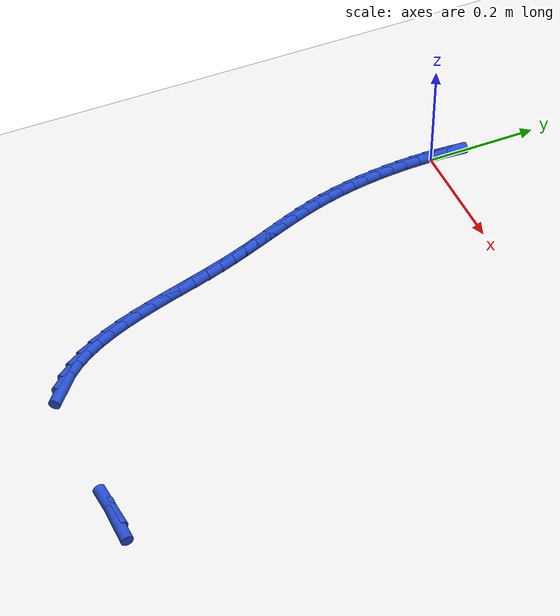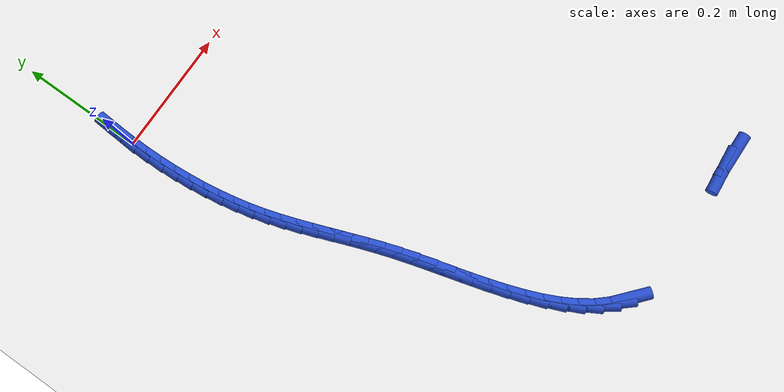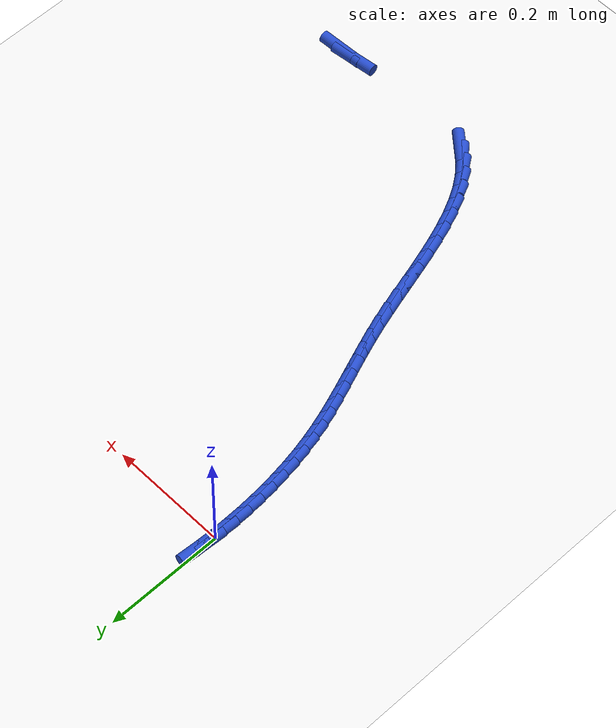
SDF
<sdf version="1.6">
 <world name="default">
  <model name="ground_plane">
   <static>1</static>
   <link name="link">
    <collision name="collision">
     <geometry><plane><normal>0 0 1</normal><size>100 100</size></plane></geometry>
     <surface><friction><ode><mu>100</mu><mu2>50</mu2></ode></friction></surface>
    </collision>
    <visual name="visual">
     <cast_shadows>0</cast_shadows>
     <geometry><plane><normal>0 0 1</normal><size>100 100</size></plane></geometry>
     <material>
      <script><uri>file://media/materials/scripts/gazebo.material</uri><name>Gazebo/WhiteGlow</name></script>
     </material>
    </visual>
   </link>
  </model>
  <model name="line">
   <link name="link_0">
    <pose>3.469446951953614e-18 -1.3877787807814457e-17 0.01 0 1.57 1.5349966315205532</pose>
    <collision name="collision">
     <geometry><cylinder><radius>0.01</radius><length>0.08</length></cylinder></geometry>
    </collision>
    <visual name="visual">
     <material>
      <script><name>Gazebo/Blue</name><uri>file://media/materials/scripts/gazebo.material</uri></script>
     </material>
     <geometry><cylinder><radius>0.01</radius><length>0.08</length></cylinder></geometry>
    </visual>
   </link>
   <link name="link_240">
    <pose>0.522911942031777 -0.7707624776303094 0.01 0 1.57 0.03796574849995566</pose>
    <collision name="collision">
     <geometry><cylinder><radius>0.01</radius><length>0.08</length></cylinder></geometry>
    </collision>
    <visual name="visual">
     <material>
      <script><name>Gazebo/Blue</name><uri>file://media/materials/scripts/gazebo.material</uri></script>
     </material>
     <geometry><cylinder><radius>0.01</radius><length>0.08</length></cylinder></geometry>
    </visual>
   </link>
   <link name="link_241">
    <pose>0.4962835578255461 -0.7717739301833303 0.01 0 1.57 0.10808124786075092</pose>
    <collision name="collision">
     <geometry><cylinder><radius>0.01</radius><length>0.08</length></cylinder></geometry>
    </collision>
    <visual name="visual">
     <material>
      <script><name>Gazebo/Blue</name><uri>file://media/materials/scripts/gazebo.material</uri></script>
     </material>
     <geometry><cylinder><radius>0.01</radius><length>0.08</length></cylinder></geometry>
    </visual>
   </link>
   <link name="link_250">
    <pose>0.24436424438832377 -0.7595002854497099 0.01 0 1.57 -0.703600476036129</pose>
    <collision name="collision">
     <geometry><cylinder><radius>0.01</radius><length>0.08</length></cylinder></geometry>
    </collision>
    <visual name="visual">
     <material>
      <script><name>Gazebo/Blue</name><uri>file://media/materials/scripts/gazebo.material</uri></script>
     </material>
     <geometry><cylinder><radius>0.01</radius><length>0.08</length></cylinder></geometry>
    </visual>
   </link>
   <link name="link_251">
    <pose>0.22568356135677967 -0.7436504364709818 0.01 0 1.57 -0.8411968710237758</pose>
    <collision name="collision">
     <geometry><cylinder><radius>0.01</radius><length>0.08</length></cylinder></geometry>
    </collision>
    <visual name="visual">
     <material>
      <script><name>Gazebo/Blue</name><uri>file://media/materials/scripts/gazebo.material</uri></script>
     </material>
     <geometry><cylinder><radius>0.01</radius><length>0.08</length></cylinder></geometry>
    </visual>
   </link>
   <link name="link_252">
    <pose>0.2090012644688933 -0.724994248824416 0.01 0 1.57 -0.956834612875896</pose>
    <collision name="collision">
     <geometry><cylinder><radius>0.01</radius><length>0.08</length></cylinder></geometry>
    </collision>
    <visual name="visual">
     <material>
      <script><name>Gazebo/Blue</name><uri>file://media/materials/scripts/gazebo.material</uri></script>
     </material>
     <geometry><cylinder><radius>0.01</radius><length>0.08</length></cylinder></geometry>
    </visual>
   </link>
   <link name="link_253">
    <pose>0.19410894398023146 -0.7038653618630332 0.01 0 1.57 -1.0511713591988783</pose>
    <collision name="collision">
     <geometry><cylinder><radius>0.01</radius><length>0.08</length></cylinder></geometry>
    </collision>
    <visual name="visual">
     <material>
      <script><name>Gazebo/Blue</name><uri>file://media/materials/scripts/gazebo.material</uri></script>
     </material>
     <geometry><cylinder><radius>0.01</radius><length>0.08</length></cylinder></geometry>
    </visual>
   </link>
   <link name="link_254">
    <pose>0.18079819014635912 -0.6805974149398518 0.01 0 1.57 -1.126445453765318</pose>
    <collision name="collision">
     <geometry><cylinder><radius>0.01</radius><length>0.08</length></cylinder></geometry>
    </collision>
    <visual name="visual">
     <material>
      <script><name>Gazebo/Blue</name><uri>file://media/materials/scripts/gazebo.material</uri></script>
     </material>
     <geometry><cylinder><radius>0.01</radius><length>0.08</length></cylinder></geometry>
    </visual>
   </link>
   <link name="link_255">
    <pose>0.16886059322284208 -0.6555240474078912 0.01 0 1.57 -1.18527317728276</pose>
    <collision name="collision">
     <geometry><cylinder><radius>0.01</radius><length>0.08</length></cylinder></geometry>
    </collision>
    <visual name="visual">
     <material>
      <script><name>Gazebo/Blue</name><uri>file://media/materials/scripts/gazebo.material</uri></script>
     </material>
     <geometry><cylinder><radius>0.01</radius><length>0.08</length></cylinder></geometry>
    </visual>
   </link>
   <link name="link_256">
    <pose>0.15808774346524596 -0.6289788986201703 0.01 0 1.57 -1.2300288438638616</pose>
    <collision name="collision">
     <geometry><cylinder><radius>0.01</radius><length>0.08</length></cylinder></geometry>
    </collision>
    <visual name="visual">
     <material>
      <script><name>Gazebo/Blue</name><uri>file://media/materials/scripts/gazebo.material</uri></script>
     </material>
     <geometry><cylinder><radius>0.01</radius><length>0.08</length></cylinder></geometry>
    </visual>
   </link>
   <link name="link_257">
    <pose>0.14827123112913645 -0.6012956079297086 0.01 0 1.57 -1.2626069067678691</pose>
    <collision name="collision">
     <geometry><cylinder><radius>0.01</radius><length>0.08</length></cylinder></geometry>
    </collision>
    <visual name="visual">
     <material>
      <script><name>Gazebo/Blue</name><uri>file://media/materials/scripts/gazebo.material</uri></script>
     </material>
     <geometry><cylinder><radius>0.01</radius><length>0.08</length></cylinder></geometry>
    </visual>
   </link>
   <link name="link_258">
    <pose>0.1392026464700792 -0.5728078146895255 0.01 0 1.57 -1.2843694201290898</pose>
    <collision name="collision">
     <geometry><cylinder><radius>0.01</radius><length>0.08</length></cylinder></geometry>
    </collision>
    <visual name="visual">
     <material>
      <script><name>Gazebo/Blue</name><uri>file://media/materials/scripts/gazebo.material</uri></script>
     </material>
     <geometry><cylinder><radius>0.01</radius><length>0.08</length></cylinder></geometry>
    </visual>
   </link>
   <link name="link_259">
    <pose>0.1306735797436399 -0.5438491582526397 0.01 0 1.57 -1.2961594018629687</pose>
    <collision name="collision">
     <geometry><cylinder><radius>0.01</radius><length>0.08</length></cylinder></geometry>
    </collision>
    <visual name="visual">
     <material>
      <script><name>Gazebo/Blue</name><uri>file://media/materials/scripts/gazebo.material</uri></script>
     </material>
     <geometry><cylinder><radius>0.01</radius><length>0.08</length></cylinder></geometry>
    </visual>
   </link>
   <link name="link_260">
    <pose>0.12247562120538422 -0.5147532779720707 0.01 0 1.57 -1.2983200291527104</pose>
    <collision name="collision">
     <geometry><cylinder><radius>0.01</radius><length>0.08</length></cylinder></geometry>
    </collision>
    <visual name="visual">
     <material>
      <script><name>Gazebo/Blue</name><uri>file://media/materials/scripts/gazebo.material</uri></script>
     </material>
     <geometry><cylinder><radius>0.01</radius><length>0.08</length></cylinder></geometry>
    </visual>
   </link>
   <link name="link_261">
    <pose>0.11440036111087758 -0.48585381320083687 0.01 0 1.57 -1.2906913377592248</pose>
    <collision name="collision">
     <geometry><cylinder><radius>0.01</radius><length>0.08</length></cylinder></geometry>
    </collision>
    <visual name="visual">
     <material>
      <script><name>Gazebo/Blue</name><uri>file://media/materials/scripts/gazebo.material</uri></script>
     </material>
     <geometry><cylinder><radius>0.01</radius><length>0.08</length></cylinder></geometry>
    </visual>
   </link>
   <link name="link_262">
    <pose>0.10623938971568614 -0.45748440329195916 0.01 0 1.57 -1.2725788345637477</pose>
    <collision name="collision">
     <geometry><cylinder><radius>0.01</radius><length>0.08</length></cylinder></geometry>
    </collision>
    <visual name="visual">
     <material>
      <script><name>Gazebo/Blue</name><uri>file://media/materials/scripts/gazebo.material</uri></script>
     </material>
     <geometry><cylinder><radius>0.01</radius><length>0.08</length></cylinder></geometry>
    </visual>
   </link>
   <link name="link_263">
    <pose>0.09778448364773214 -0.42997841991184954 0.01 0 1.57 -1.2473044256132613</pose>
    <collision name="collision">
     <geometry><cylinder><radius>0.01</radius><length>0.08</length></cylinder></geometry>
    </collision>
    <visual name="visual">
     <material>
      <script><name>Gazebo/Blue</name><uri>file://media/materials/scripts/gazebo.material</uri></script>
     </material>
     <geometry><cylinder><radius>0.01</radius><length>0.08</length></cylinder></geometry>
    </visual>
   </link>
   <link name="link_264">
    <pose>0.08891948700461871 -0.4035369982250686 0.01 0 1.57 -1.2265222034447139</pose>
    <collision name="collision">
     <geometry><cylinder><radius>0.01</radius><length>0.08</length></cylinder></geometry>
    </collision>
    <visual name="visual">
     <material>
      <script><name>Gazebo/Blue</name><uri>file://media/materials/scripts/gazebo.material</uri></script>
     </material>
     <geometry><cylinder><radius>0.01</radius><length>0.08</length></cylinder></geometry>
    </visual>
   </link>
   <link name="link_265">
    <pose>0.07976877890734742 -0.3780157929547408 0.01 0 1.57 -1.2129856516042345</pose>
    <collision name="collision">
     <geometry><cylinder><radius>0.01</radius><length>0.08</length></cylinder></geometry>
    </collision>
    <visual name="visual">
     <material>
      <script><name>Gazebo/Blue</name><uri>file://media/materials/scripts/gazebo.material</uri></script>
     </material>
     <geometry><cylinder><radius>0.01</radius><length>0.08</length></cylinder></geometry>
    </visual>
   </link>
   <link name="link_266">
    <pose>0.07049553146790939 -0.35321474045307544 0.01 0 1.57 -1.2074388555258737</pose>
    <collision name="collision">
     <geometry><cylinder><radius>0.01</radius><length>0.08</length></cylinder></geometry>
    </collision>
    <visual name="visual">
     <material>
      <script><name>Gazebo/Blue</name><uri>file://media/materials/scripts/gazebo.material</uri></script>
     </material>
     <geometry><cylinder><radius>0.01</radius><length>0.08</length></cylinder></geometry>
    </visual>
   </link>
   <link name="link_267">
    <pose>0.061262916798295756 -0.3289337770722822 0.01 0 1.57 -1.2104365079342032</pose>
    <collision name="collision">
     <geometry><cylinder><radius>0.01</radius><length>0.08</length></cylinder></geometry>
    </collision>
    <visual name="visual">
     <material>
      <script><name>Gazebo/Blue</name><uri>file://media/materials/scripts/gazebo.material</uri></script>
     </material>
     <geometry><cylinder><radius>0.01</radius><length>0.08</length></cylinder></geometry>
    </visual>
   </link>
   <link name="link_268">
    <pose>0.052234107010497674 -0.3049728391645706 0.01 0 1.57 -1.2223073849774997</pose>
    <collision name="collision">
     <geometry><cylinder><radius>0.01</radius><length>0.08</length></cylinder></geometry>
    </collision>
    <visual name="visual">
     <material>
      <script><name>Gazebo/Blue</name><uri>file://media/materials/scripts/gazebo.material</uri></script>
     </material>
     <geometry><cylinder><radius>0.01</radius><length>0.08</length></cylinder></geometry>
    </visual>
   </link>
   <link name="link_269">
    <pose>0.0435722742165063 -0.2811318630821499 0.01 0 1.57 -1.2431133850219307</pose>
    <collision name="collision">
     <geometry><cylinder><radius>0.01</radius><length>0.08</length></cylinder></geometry>
    </collision>
    <visual name="visual">
     <material>
      <script><name>Gazebo/Blue</name><uri>file://media/materials/scripts/gazebo.material</uri></script>
     </material>
     <geometry><cylinder><radius>0.01</radius><length>0.08</length></cylinder></geometry>
    </visual>
   </link>
   <link name="link_270">
    <pose>0.03544059052831251 -0.2572107851772292 0.01 0 1.57 -1.2726059630322502</pose>
    <collision name="collision">
     <geometry><cylinder><radius>0.01</radius><length>0.08</length></cylinder></geometry>
    </collision>
    <visual name="visual">
     <material>
      <script><name>Gazebo/Blue</name><uri>file://media/materials/scripts/gazebo.material</uri></script>
     </material>
     <geometry><cylinder><radius>0.01</radius><length>0.08</length></cylinder></geometry>
    </visual>
   </link>
   <link name="link_271">
    <pose>0.028002228057907984 -0.2330095418020192 0.01 0 1.57 -1.3098814127717175</pose>
    <collision name="collision">
     <geometry><cylinder><radius>0.01</radius><length>0.08</length></cylinder></geometry>
    </collision>
    <visual name="visual">
     <material>
      <script><name>Gazebo/Blue</name><uri>file://media/materials/scripts/gazebo.material</uri></script>
     </material>
     <geometry><cylinder><radius>0.01</radius><length>0.08</length></cylinder></geometry>
    </visual>
   </link>
   <link name="link_272">
    <pose>0.02141465484678044 -0.20833711608455524 0.01 0 1.57 -1.3491561466568585</pose>
    <collision name="collision">
     <geometry><cylinder><radius>0.01</radius><length>0.08</length></cylinder></geometry>
    </collision>
    <visual name="visual">
     <material>
      <script><name>Gazebo/Blue</name><uri>file://media/materials/scripts/gazebo.material</uri></script>
     </material>
     <geometry><cylinder><radius>0.01</radius><length>0.08</length></cylinder></geometry>
    </visual>
   </link>
   <link name="link_273">
    <pose>0.01573982855379999 -0.18315397262915428 0.01 0 1.57 -1.3862888268952342</pose>
    <collision name="collision">
     <geometry><cylinder><radius>0.01</radius><length>0.08</length></cylinder></geometry>
    </collision>
    <visual name="visual">
     <material>
      <script><name>Gazebo/Blue</name><uri>file://media/materials/scripts/gazebo.material</uri></script>
     </material>
     <geometry><cylinder><radius>0.01</radius><length>0.08</length></cylinder></geometry>
    </visual>
   </link>
   <link name="link_274">
    <pose>0.010960612904508511 -0.1575460206824546 0.01 0 1.57 -1.4214666670682707</pose>
    <collision name="collision">
     <geometry><cylinder><radius>0.01</radius><length>0.08</length></cylinder></geometry>
    </collision>
    <visual name="visual">
     <material>
      <script><name>Gazebo/Blue</name><uri>file://media/materials/scripts/gazebo.material</uri></script>
     </material>
     <geometry><cylinder><radius>0.01</radius><length>0.08</length></cylinder></geometry>
    </visual>
   </link>
   <link name="link_275">
    <pose>0.007057487496651933 -0.1316029507679387 0.01 0 1.57 -1.454985062572344</pose>
    <collision name="collision">
     <geometry><cylinder><radius>0.01</radius><length>0.08</length></cylinder></geometry>
    </collision>
    <visual name="visual">
     <material>
      <script><name>Gazebo/Blue</name><uri>file://media/materials/scripts/gazebo.material</uri></script>
     </material>
     <geometry><cylinder><radius>0.01</radius><length>0.08</length></cylinder></geometry>
    </visual>
   </link>
   <link name="link_276">
    <pose>0.004010931927976179 -0.10541445340908896 0.01 0 1.57 -1.4871215800613589</pose>
    <collision name="collision">
     <geometry><cylinder><radius>0.01</radius><length>0.08</length></cylinder></geometry>
    </collision>
    <visual name="visual">
     <material>
      <script><name>Gazebo/Blue</name><uri>file://media/materials/scripts/gazebo.material</uri></script>
     </material>
     <geometry><cylinder><radius>0.01</radius><length>0.08</length></cylinder></geometry>
    </visual>
   </link>
   <link name="link_277">
    <pose>0.0018014257962271827 -0.07907021912938791 0.01 0 1.57 -1.5181391691831743</pose>
    <collision name="collision">
     <geometry><cylinder><radius>0.01</radius><length>0.08</length></cylinder></geometry>
    </collision>
    <visual name="visual">
     <material>
      <script><name>Gazebo/Blue</name><uri>file://media/materials/scripts/gazebo.material</uri></script>
     </material>
     <geometry><cylinder><radius>0.01</radius><length>0.08</length></cylinder></geometry>
    </visual>
   </link>
   <link name="link_278">
    <pose>0.0004094486991508674 -0.052659938452317895 0.01 0 1.57 -1.5482899277347177</pose>
    <collision name="collision">
     <geometry><cylinder><radius>0.01</radius><length>0.08</length></cylinder></geometry>
    </collision>
    <visual name="visual">
     <material>
      <script><name>Gazebo/Blue</name><uri>file://media/materials/scripts/gazebo.material</uri></script>
     </material>
     <geometry><cylinder><radius>0.01</radius><length>0.08</length></cylinder></geometry>
    </visual>
   </link>
   <link name="link_279">
    <pose>-0.00018451976550684515 -0.02627330190136063 0.01 0 1.57 1.563773352196916</pose>
    <collision name="collision">
     <geometry><cylinder><radius>0.01</radius><length>0.08</length></cylinder></geometry>
    </collision>
    <visual name="visual">
     <material>
      <script><name>Gazebo/Blue</name><uri>file://media/materials/scripts/gazebo.material</uri></script>
     </material>
     <geometry><cylinder><radius>0.01</radius><length>0.08</length></cylinder></geometry>
    </visual>
   </link>
   <link name="link_280">
    <pose>1.1275702593849246e-17 -1.3877787807814457e-16 0.01 0 1.57 1.5346219500285732</pose>
    <collision name="collision">
     <geometry><cylinder><radius>0.01</radius><length>0.08</length></cylinder></geometry>
    </collision>
    <visual name="visual">
     <material>
      <script><name>Gazebo/Blue</name><uri>file://media/materials/scripts/gazebo.material</uri></script>
     </material>
     <geometry><cylinder><radius>0.01</radius><length>0.08</length></cylinder></geometry>
    </visual>
   </link>
   <link name="link_281">
    <pose>0.0009434875934173307 0.0260702767282819 0.01 0 1.57 1.5056020278931774</pose>
    <collision name="collision">
     <geometry><cylinder><radius>0.01</radius><length>0.08</length></cylinder></geometry>
    </collision>
    <visual name="visual">
     <material>
      <script><name>Gazebo/Blue</name><uri>file://media/materials/scripts/gazebo.material</uri></script>
     </material>
     <geometry><cylinder><radius>0.01</radius><length>0.08</length></cylinder></geometry>
    </visual>
   </link>
  </model>
 </world>
</sdf>
